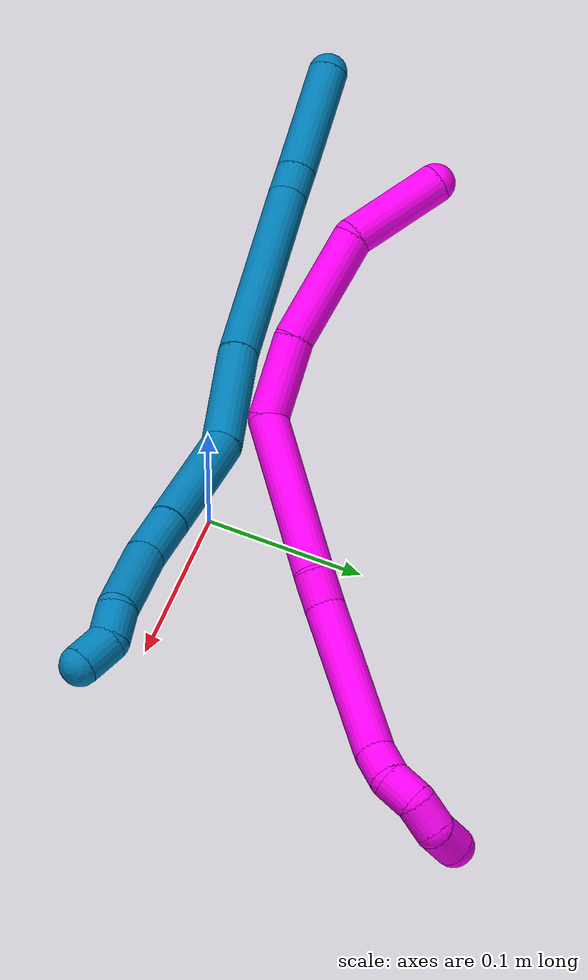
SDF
<sdf version="1.7">
 <world name="default">
  <model name="9">
   <static>0</static>
   <link name="9">
    <collision name="collision-cylinder-e_1_1_4">
     <pose>0.030802 0.003583 -0.022771 -2.98552 0.928352 -2.83172</pose>
     <geometry><cylinder><radius>0.0125</radius><length>0.076945</length></cylinder></geometry>
     <surface>
      <friction><ode><mu>1.16</mu><mu2>1.16</mu2><slip1>0</slip1><slip2>0</slip2></ode></friction>
      <contact><ode><kp>1e+06</kp><kd>1</kd><max_vel>0</max_vel><min_depth>0.001</min_depth></ode></contact>
     </surface>
    </collision>
    <visual name="visual-cylinder-e_1_1_4">
     <pose>0.030802 0.003583 -0.022771 -2.98552 0.928352 -2.83172</pose>
     <geometry><cylinder><radius>0.0125</radius><length>0.076945</length></cylinder></geometry>
     <material><ambient>0 0.490196 0.709804 1</ambient></material>
    </visual>
    <collision name="collision-cylinder-e_2_4_5">
     <pose>0.069667 0.00814 -0.051739 -2.98567 0.909541 -2.82473</pose>
     <geometry><cylinder><radius>0.0125</radius><length>0.020432</length></cylinder></geometry>
     <surface>
      <friction><ode><mu>1.16</mu><mu2>1.16</mu2><slip1>0</slip1><slip2>0</slip2></ode></friction>
      <contact><ode><kp>1e+06</kp><kd>1</kd><max_vel>0</max_vel><min_depth>0.001</min_depth></ode></contact>
     </surface>
    </collision>
    <visual name="visual-cylinder-e_2_4_5">
     <pose>0.069667 0.00814 -0.051739 -2.98567 0.909541 -2.82473</pose>
     <geometry><cylinder><radius>0.0125</radius><length>0.020432</length></cylinder></geometry>
     <material><ambient>0 0.490196 0.709804 1</ambient></material>
    </visual>
    <collision name="collision-cylinder-e_3_5_6">
     <pose>0.124259 0.00803 -0.104203 3.11815 0.788093 3.08523</pose>
     <geometry><cylinder><radius>0.0125</radius><length>0.131251</length></cylinder></geometry>
     <surface>
      <friction><ode><mu>1.16</mu><mu2>1.16</mu2><slip1>0</slip1><slip2>0</slip2></ode></friction>
      <contact><ode><kp>1e+06</kp><kd>1</kd><max_vel>0</max_vel><min_depth>0.001</min_depth></ode></contact>
     </surface>
    </collision>
    <visual name="visual-cylinder-e_3_5_6">
     <pose>0.124259 0.00803 -0.104203 3.11815 0.788093 3.08523</pose>
     <geometry><cylinder><radius>0.0125</radius><length>0.131251</length></cylinder></geometry>
     <material><ambient>0 0.490196 0.709804 1</ambient></material>
    </visual>
    <collision name="collision-cylinder-e_4_6_7">
     <pose>0.19718 0.003907 -0.173214 3.00881 0.855109 2.8518</pose>
     <geometry><cylinder><radius>0.0125</radius><length>0.069946</length></cylinder></geometry>
     <surface>
      <friction><ode><mu>1.16</mu><mu2>1.16</mu2><slip1>0</slip1><slip2>0</slip2></ode></friction>
      <contact><ode><kp>1e+06</kp><kd>1</kd><max_vel>0</max_vel><min_depth>0.001</min_depth></ode></contact>
     </surface>
    </collision>
    <visual name="visual-cylinder-e_4_6_7">
     <pose>0.19718 0.003907 -0.173214 3.00881 0.855109 2.8518</pose>
     <geometry><cylinder><radius>0.0125</radius><length>0.069946</length></cylinder></geometry>
     <material><ambient>0 0.490196 0.709804 1</ambient></material>
    </visual>
    <collision name="collision-cylinder-e_5_7_8">
     <pose>0.243602 0.004538 -0.227633 -3.02629 0.560888 -2.74606</pose>
     <geometry><cylinder><radius>0.0125</radius><length>0.07531</length></cylinder></geometry>
     <surface>
      <friction><ode><mu>1.16</mu><mu2>1.16</mu2><slip1>0</slip1><slip2>0</slip2></ode></friction>
      <contact><ode><kp>1e+06</kp><kd>1</kd><max_vel>0</max_vel><min_depth>0.001</min_depth></ode></contact>
     </surface>
    </collision>
    <visual name="visual-cylinder-e_5_7_8">
     <pose>0.243602 0.004538 -0.227633 -3.02629 0.560888 -2.74606</pose>
     <geometry><cylinder><radius>0.0125</radius><length>0.07531</length></cylinder></geometry>
     <material><ambient>0 0.490196 0.709804 1</ambient></material>
    </visual>
    <collision name="collision-cylinder-e_6_8_9">
     <pose>0.272542 0.010278 -0.272483 -2.98559 0.588943 -2.63714</pose>
     <geometry><cylinder><radius>0.0125</radius><length>0.032081</length></cylinder></geometry>
     <surface>
      <friction><ode><mu>1.16</mu><mu2>1.16</mu2><slip1>0</slip1><slip2>0</slip2></ode></friction>
      <contact><ode><kp>1e+06</kp><kd>1</kd><max_vel>0</max_vel><min_depth>0.001</min_depth></ode></contact>
     </surface>
    </collision>
    <visual name="visual-cylinder-e_6_8_9">
     <pose>0.272542 0.010278 -0.272483 -2.98559 0.588943 -2.63714</pose>
     <geometry><cylinder><radius>0.0125</radius><length>0.032081</length></cylinder></geometry>
     <material><ambient>0 0.490196 0.709804 1</ambient></material>
    </visual>
    <collision name="collision-cylinder-e_7_9_10">
     <pose>0.294558 0.01139 -0.306756 3.09608 0.555386 2.98226</pose>
     <geometry><cylinder><radius>0.0125</radius><length>0.049709</length></cylinder></geometry>
     <surface>
      <friction><ode><mu>1.16</mu><mu2>1.16</mu2><slip1>0</slip1><slip2>0</slip2></ode></friction>
      <contact><ode><kp>1e+06</kp><kd>1</kd><max_vel>0</max_vel><min_depth>0.001</min_depth></ode></contact>
     </surface>
    </collision>
    <visual name="visual-cylinder-e_7_9_10">
     <pose>0.294558 0.01139 -0.306756 3.09608 0.555386 2.98226</pose>
     <geometry><cylinder><radius>0.0125</radius><length>0.049709</length></cylinder></geometry>
     <material><ambient>0 0.490196 0.709804 1</ambient></material>
    </visual>
    <collision name="collision-cylinder-e_8_10_11">
     <pose>0.316151 0.010754 -0.334247 -3.09078 0.924511 -3.03968</pose>
     <geometry><cylinder><radius>0.0125</radius><length>0.021264</length></cylinder></geometry>
     <surface>
      <friction><ode><mu>1.16</mu><mu2>1.16</mu2><slip1>0</slip1><slip2>0</slip2></ode></friction>
      <contact><ode><kp>1e+06</kp><kd>1</kd><max_vel>0</max_vel><min_depth>0.001</min_depth></ode></contact>
     </surface>
    </collision>
    <visual name="visual-cylinder-e_8_10_11">
     <pose>0.316151 0.010754 -0.334247 -3.09078 0.924511 -3.03968</pose>
     <geometry><cylinder><radius>0.0125</radius><length>0.021264</length></cylinder></geometry>
     <material><ambient>0 0.490196 0.709804 1</ambient></material>
    </visual>
    <collision name="collision-cylinder-e_9_11_2">
     <pose>0.330338 0.016431 -0.349119 -2.57847 0.516932 -1.48103</pose>
     <geometry><cylinder><radius>0.0125</radius><length>0.023063</length></cylinder></geometry>
     <surface>
      <friction><ode><mu>1.16</mu><mu2>1.16</mu2><slip1>0</slip1><slip2>0</slip2></ode></friction>
      <contact><ode><kp>1e+06</kp><kd>1</kd><max_vel>0</max_vel><min_depth>0.001</min_depth></ode></contact>
     </surface>
    </collision>
    <visual name="visual-cylinder-e_9_11_2">
     <pose>0.330338 0.016431 -0.349119 -2.57847 0.516932 -1.48103</pose>
     <geometry><cylinder><radius>0.0125</radius><length>0.023063</length></cylinder></geometry>
     <material><ambient>0 0.490196 0.709804 1</ambient></material>
    </visual>
    <collision name="collision-sphere-2">
     <pose>0.336037 0.021783 -0.357596 0 -0 0</pose>
     <geometry><sphere><radius>0.0125</radius></sphere></geometry>
     <surface>
      <friction><ode><mu>1.16</mu><mu2>1.16</mu2><slip1>0</slip1><slip2>0</slip2></ode></friction>
      <contact><ode><kp>1e+06</kp><kd>1</kd><max_vel>0</max_vel><min_depth>0.001</min_depth></ode></contact>
     </surface>
    </collision>
    <visual name="visual-sphere-2">
     <pose>0.336037 0.021783 -0.357596 0 -0 0</pose>
     <geometry><sphere><radius>0.0125</radius></sphere></geometry>
     <material><ambient>0 0.490196 0.709804 1</ambient></material>
    </visual>
    <collision name="collision-sphere-11">
     <pose>0.324639 0.01108 -0.340642 0 -0 0</pose>
     <geometry><sphere><radius>0.0125</radius></sphere></geometry>
     <surface>
      <friction><ode><mu>1.16</mu><mu2>1.16</mu2><slip1>0</slip1><slip2>0</slip2></ode></friction>
      <contact><ode><kp>1e+06</kp><kd>1</kd><max_vel>0</max_vel><min_depth>0.001</min_depth></ode></contact>
     </surface>
    </collision>
    <visual name="visual-sphere-11">
     <pose>0.324639 0.01108 -0.340642 0 -0 0</pose>
     <geometry><sphere><radius>0.0125</radius></sphere></geometry>
     <material><ambient>0 0.490196 0.709804 1</ambient></material>
    </visual>
    <collision name="collision-sphere-10">
     <pose>0.307663 0.010429 -0.327853 0 -0 0</pose>
     <geometry><sphere><radius>0.0125</radius></sphere></geometry>
     <surface>
      <friction><ode><mu>1.16</mu><mu2>1.16</mu2><slip1>0</slip1><slip2>0</slip2></ode></friction>
      <contact><ode><kp>1e+06</kp><kd>1</kd><max_vel>0</max_vel><min_depth>0.001</min_depth></ode></contact>
     </surface>
    </collision>
    <visual name="visual-sphere-10">
     <pose>0.307663 0.010429 -0.327853 0 -0 0</pose>
     <geometry><sphere><radius>0.0125</radius></sphere></geometry>
     <material><ambient>0 0.490196 0.709804 1</ambient></material>
    </visual>
    <collision name="collision-sphere-9">
     <pose>0.281452 0.012351 -0.285659 0 -0 0</pose>
     <geometry><sphere><radius>0.0125</radius></sphere></geometry>
     <surface>
      <friction><ode><mu>1.16</mu><mu2>1.16</mu2><slip1>0</slip1><slip2>0</slip2></ode></friction>
      <contact><ode><kp>1e+06</kp><kd>1</kd><max_vel>0</max_vel><min_depth>0.001</min_depth></ode></contact>
     </surface>
    </collision>
    <visual name="visual-sphere-9">
     <pose>0.281452 0.012351 -0.285659 0 -0 0</pose>
     <geometry><sphere><radius>0.0125</radius></sphere></geometry>
     <material><ambient>0 0.490196 0.709804 1</ambient></material>
    </visual>
    <collision name="collision-sphere-4">
     <pose>0.061605 0.007166 -0.045541 0 -0 0</pose>
     <geometry><sphere><radius>0.0125</radius></sphere></geometry>
     <surface>
      <friction><ode><mu>1.16</mu><mu2>1.16</mu2><slip1>0</slip1><slip2>0</slip2></ode></friction>
      <contact><ode><kp>1e+06</kp><kd>1</kd><max_vel>0</max_vel><min_depth>0.001</min_depth></ode></contact>
     </surface>
    </collision>
    <visual name="visual-sphere-4">
     <pose>0.061605 0.007166 -0.045541 0 -0 0</pose>
     <geometry><sphere><radius>0.0125</radius></sphere></geometry>
     <material><ambient>0 0.490196 0.709804 1</ambient></material>
    </visual>
    <collision name="collision-sphere-1">
     <geometry><sphere><radius>0.0125</radius></sphere></geometry>
     <surface>
      <friction><ode><mu>1.16</mu><mu2>1.16</mu2><slip1>0</slip1><slip2>0</slip2></ode></friction>
      <contact><ode><kp>1e+06</kp><kd>1</kd><max_vel>0</max_vel><min_depth>0.001</min_depth></ode></contact>
     </surface>
    </collision>
    <visual name="visual-sphere-1">
     <geometry><sphere><radius>0.0125</radius></sphere></geometry>
     <material><ambient>0 0.490196 0.709804 1</ambient></material>
    </visual>
    <collision name="collision-sphere-8">
     <pose>0.263632 0.008206 -0.259307 0 -0 0</pose>
     <geometry><sphere><radius>0.0125</radius></sphere></geometry>
     <surface>
      <friction><ode><mu>1.16</mu><mu2>1.16</mu2><slip1>0</slip1><slip2>0</slip2></ode></friction>
      <contact><ode><kp>1e+06</kp><kd>1</kd><max_vel>0</max_vel><min_depth>0.001</min_depth></ode></contact>
     </surface>
    </collision>
    <visual name="visual-sphere-8">
     <pose>0.263632 0.008206 -0.259307 0 -0 0</pose>
     <geometry><sphere><radius>0.0125</radius></sphere></geometry>
     <material><ambient>0 0.490196 0.709804 1</ambient></material>
    </visual>
    <collision name="collision-sphere-5">
     <pose>0.07773 0.009115 -0.057937 0 -0 0</pose>
     <geometry><sphere><radius>0.0125</radius></sphere></geometry>
     <surface>
      <friction><ode><mu>1.16</mu><mu2>1.16</mu2><slip1>0</slip1><slip2>0</slip2></ode></friction>
      <contact><ode><kp>1e+06</kp><kd>1</kd><max_vel>0</max_vel><min_depth>0.001</min_depth></ode></contact>
     </surface>
    </collision>
    <visual name="visual-sphere-5">
     <pose>0.07773 0.009115 -0.057937 0 -0 0</pose>
     <geometry><sphere><radius>0.0125</radius></sphere></geometry>
     <material><ambient>0 0.490196 0.709804 1</ambient></material>
    </visual>
    <collision name="collision-sphere-6">
     <pose>0.170788 0.006945 -0.150469 0 -0 0</pose>
     <geometry><sphere><radius>0.0125</radius></sphere></geometry>
     <surface>
      <friction><ode><mu>1.16</mu><mu2>1.16</mu2><slip1>0</slip1><slip2>0</slip2></ode></friction>
      <contact><ode><kp>1e+06</kp><kd>1</kd><max_vel>0</max_vel><min_depth>0.001</min_depth></ode></contact>
     </surface>
    </collision>
    <visual name="visual-sphere-6">
     <pose>0.170788 0.006945 -0.150469 0 -0 0</pose>
     <geometry><sphere><radius>0.0125</radius></sphere></geometry>
     <material><ambient>0 0.490196 0.709804 1</ambient></material>
    </visual>
    <collision name="collision-sphere-7">
     <pose>0.223572 0.000869 -0.195959 0 -0 0</pose>
     <geometry><sphere><radius>0.0125</radius></sphere></geometry>
     <surface>
      <friction><ode><mu>1.16</mu><mu2>1.16</mu2><slip1>0</slip1><slip2>0</slip2></ode></friction>
      <contact><ode><kp>1e+06</kp><kd>1</kd><max_vel>0</max_vel><min_depth>0.001</min_depth></ode></contact>
     </surface>
    </collision>
    <visual name="visual-sphere-7">
     <pose>0.223572 0.000869 -0.195959 0 -0 0</pose>
     <geometry><sphere><radius>0.0125</radius></sphere></geometry>
     <material><ambient>0 0.490196 0.709804 1</ambient></material>
    </visual>
    <inertial>
     <pose>0.179934 0.007229 -0.169787 0 -0 0</pose>
     <mass>0.5</mass>
     <inertia>
      <ixx>-0.000207</ixx>
      <ixy>0</ixy>
      <ixz>0</ixz>
      <iyy>0.000313</iyy>
      <iyz>0</iyz>
      <izz>-0.000257</izz>
     </inertia>
    </inertial>
   </link>
   <pose>-0.297044 -0.042894 0.070411 -2.60307 0.589617 0.516642</pose>
  </model>
  <model name="10">
   <static>0</static>
   <link name="10">
    <collision name="collision-cylinder-e_1_1_4">
     <pose>-0.010393 0.030921 0.002166 -1.50088 -0.323509 0.301987</pose>
     <geometry><cylinder><radius>0.0125</radius><length>0.065386</length></cylinder></geometry>
     <surface>
      <friction><ode><mu>1.16</mu><mu2>1.16</mu2><slip1>0</slip1><slip2>0</slip2></ode></friction>
      <contact><ode><kp>1e+06</kp><kd>1</kd><max_vel>0</max_vel><min_depth>0.001</min_depth></ode></contact>
     </surface>
    </collision>
    <visual name="visual-cylinder-e_1_1_4">
     <pose>-0.010393 0.030921 0.002166 -1.50088 -0.323509 0.301987</pose>
     <geometry><cylinder><radius>0.0125</radius><length>0.065386</length></cylinder></geometry>
     <material><ambient>1 0 0.964706 1</ambient></material>
    </visual>
    <collision name="collision-cylinder-e_2_4_5">
     <pose>-0.015577 0.09812 0.005545 -1.53735 0.142522 -0.137848</pose>
     <geometry><cylinder><radius>0.0125</radius><length>0.073339</length></cylinder></geometry>
     <surface>
      <friction><ode><mu>1.16</mu><mu2>1.16</mu2><slip1>0</slip1><slip2>0</slip2></ode></friction>
      <contact><ode><kp>1e+06</kp><kd>1</kd><max_vel>0</max_vel><min_depth>0.001</min_depth></ode></contact>
     </surface>
    </collision>
    <visual name="visual-cylinder-e_2_4_5">
     <pose>-0.015577 0.09812 0.005545 -1.53735 0.142522 -0.137848</pose>
     <geometry><cylinder><radius>0.0125</radius><length>0.073339</length></cylinder></geometry>
     <material><ambient>1 0 0.964706 1</ambient></material>
    </visual>
    <collision name="collision-cylinder-e_3_5_6">
     <pose>-0.001983 0.158873 0.004915 -1.64596 0.32922 -0.35443</pose>
     <geometry><cylinder><radius>0.0125</radius><length>0.051877</length></cylinder></geometry>
     <surface>
      <friction><ode><mu>1.16</mu><mu2>1.16</mu2><slip1>0</slip1><slip2>0</slip2></ode></friction>
      <contact><ode><kp>1e+06</kp><kd>1</kd><max_vel>0</max_vel><min_depth>0.001</min_depth></ode></contact>
     </surface>
    </collision>
    <visual name="visual-cylinder-e_3_5_6">
     <pose>-0.001983 0.158873 0.004915 -1.64596 0.32922 -0.35443</pose>
     <geometry><cylinder><radius>0.0125</radius><length>0.051877</length></cylinder></geometry>
     <material><ambient>1 0 0.964706 1</ambient></material>
    </visual>
    <collision name="collision-cylinder-e_4_6_7">
     <pose>0.034515 0.217113 -0.026886 -2.29655 0.557015 -1.13291</pose>
     <geometry><cylinder><radius>0.0125</radius><length>0.106352</length></cylinder></geometry>
     <surface>
      <friction><ode><mu>1.16</mu><mu2>1.16</mu2><slip1>0</slip1><slip2>0</slip2></ode></friction>
      <contact><ode><kp>1e+06</kp><kd>1</kd><max_vel>0</max_vel><min_depth>0.001</min_depth></ode></contact>
     </surface>
    </collision>
    <visual name="visual-cylinder-e_4_6_7">
     <pose>0.034515 0.217113 -0.026886 -2.29655 0.557015 -1.13291</pose>
     <geometry><cylinder><radius>0.0125</radius><length>0.106352</length></cylinder></geometry>
     <material><ambient>1 0 0.964706 1</ambient></material>
    </visual>
    <collision name="collision-cylinder-e_5_7_8">
     <pose>0.070152 0.257693 -0.061707 -2.19054 0.732095 -1.27983</pose>
     <geometry><cylinder><radius>0.0125</radius><length>0.022519</length></cylinder></geometry>
     <surface>
      <friction><ode><mu>1.16</mu><mu2>1.16</mu2><slip1>0</slip1><slip2>0</slip2></ode></friction>
      <contact><ode><kp>1e+06</kp><kd>1</kd><max_vel>0</max_vel><min_depth>0.001</min_depth></ode></contact>
     </surface>
    </collision>
    <visual name="visual-cylinder-e_5_7_8">
     <pose>0.070152 0.257693 -0.061707 -2.19054 0.732095 -1.27983</pose>
     <geometry><cylinder><radius>0.0125</radius><length>0.022519</length></cylinder></geometry>
     <material><ambient>1 0 0.964706 1</ambient></material>
    </visual>
    <collision name="collision-cylinder-e_6_8_9">
     <pose>0.104037 0.294338 -0.09582 -2.34638 0.562866 -1.20579</pose>
     <geometry><cylinder><radius>0.0125</radius><length>0.098792</length></cylinder></geometry>
     <surface>
      <friction><ode><mu>1.16</mu><mu2>1.16</mu2><slip1>0</slip1><slip2>0</slip2></ode></friction>
      <contact><ode><kp>1e+06</kp><kd>1</kd><max_vel>0</max_vel><min_depth>0.001</min_depth></ode></contact>
     </surface>
    </collision>
    <visual name="visual-cylinder-e_6_8_9">
     <pose>0.104037 0.294338 -0.09582 -2.34638 0.562866 -1.20579</pose>
     <geometry><cylinder><radius>0.0125</radius><length>0.098792</length></cylinder></geometry>
     <material><ambient>1 0 0.964706 1</ambient></material>
    </visual>
    <collision name="collision-cylinder-e_7_9_10">
     <pose>0.135085 0.328911 -0.132897 -2.59671 0.473458 -1.42456</pose>
     <geometry><cylinder><radius>0.0125</radius><length>0.020572</length></cylinder></geometry>
     <surface>
      <friction><ode><mu>1.16</mu><mu2>1.16</mu2><slip1>0</slip1><slip2>0</slip2></ode></friction>
      <contact><ode><kp>1e+06</kp><kd>1</kd><max_vel>0</max_vel><min_depth>0.001</min_depth></ode></contact>
     </surface>
    </collision>
    <visual name="visual-cylinder-e_7_9_10">
     <pose>0.135085 0.328911 -0.132897 -2.59671 0.473458 -1.42456</pose>
     <geometry><cylinder><radius>0.0125</radius><length>0.020572</length></cylinder></geometry>
     <material><ambient>1 0 0.964706 1</ambient></material>
    </visual>
    <collision name="collision-cylinder-e_8_10_11">
     <pose>0.14739 0.335169 -0.147654 -2.92652 0.820997 -2.65532</pose>
     <geometry><cylinder><radius>0.0125</radius><length>0.02081</length></cylinder></geometry>
     <surface>
      <friction><ode><mu>1.16</mu><mu2>1.16</mu2><slip1>0</slip1><slip2>0</slip2></ode></friction>
      <contact><ode><kp>1e+06</kp><kd>1</kd><max_vel>0</max_vel><min_depth>0.001</min_depth></ode></contact>
     </surface>
    </collision>
    <visual name="visual-cylinder-e_8_10_11">
     <pose>0.14739 0.335169 -0.147654 -2.92652 0.820997 -2.65532</pose>
     <geometry><cylinder><radius>0.0125</radius><length>0.02081</length></cylinder></geometry>
     <material><ambient>1 0 0.964706 1</ambient></material>
    </visual>
    <collision name="collision-cylinder-e_9_11_12">
     <pose>0.164315 0.339567 -0.157033 -2.27542 1.18459 -1.93751</pose>
     <geometry><cylinder><radius>0.0125</radius><length>0.020102</length></cylinder></geometry>
     <surface>
      <friction><ode><mu>1.16</mu><mu2>1.16</mu2><slip1>0</slip1><slip2>0</slip2></ode></friction>
      <contact><ode><kp>1e+06</kp><kd>1</kd><max_vel>0</max_vel><min_depth>0.001</min_depth></ode></contact>
     </surface>
    </collision>
    <visual name="visual-cylinder-e_9_11_12">
     <pose>0.164315 0.339567 -0.157033 -2.27542 1.18459 -1.93751</pose>
     <geometry><cylinder><radius>0.0125</radius><length>0.020102</length></cylinder></geometry>
     <material><ambient>1 0 0.964706 1</ambient></material>
    </visual>
    <collision name="collision-cylinder-e_10_12_2">
     <pose>0.183452 0.341666 -0.157168 0.326749 1.32665 0.256223</pose>
     <geometry><cylinder><radius>0.0125</radius><length>0.020252</length></cylinder></geometry>
     <surface>
      <friction><ode><mu>1.16</mu><mu2>1.16</mu2><slip1>0</slip1><slip2>0</slip2></ode></friction>
      <contact><ode><kp>1e+06</kp><kd>1</kd><max_vel>0</max_vel><min_depth>0.001</min_depth></ode></contact>
     </surface>
    </collision>
    <visual name="visual-cylinder-e_10_12_2">
     <pose>0.183452 0.341666 -0.157168 0.326749 1.32665 0.256223</pose>
     <geometry><cylinder><radius>0.0125</radius><length>0.020252</length></cylinder></geometry>
     <material><ambient>1 0 0.964706 1</ambient></material>
    </visual>
    <collision name="collision-sphere-2">
     <pose>0.193278 0.34088 -0.15485 0 -0 0</pose>
     <geometry><sphere><radius>0.0125</radius></sphere></geometry>
     <surface>
      <friction><ode><mu>1.16</mu><mu2>1.16</mu2><slip1>0</slip1><slip2>0</slip2></ode></friction>
      <contact><ode><kp>1e+06</kp><kd>1</kd><max_vel>0</max_vel><min_depth>0.001</min_depth></ode></contact>
     </surface>
    </collision>
    <visual name="visual-sphere-2">
     <pose>0.193278 0.34088 -0.15485 0 -0 0</pose>
     <geometry><sphere><radius>0.0125</radius></sphere></geometry>
     <material><ambient>1 0 0.964706 1</ambient></material>
    </visual>
    <collision name="collision-sphere-12">
     <pose>0.173626 0.342452 -0.159486 0 -0 0</pose>
     <geometry><sphere><radius>0.0125</radius></sphere></geometry>
     <surface>
      <friction><ode><mu>1.16</mu><mu2>1.16</mu2><slip1>0</slip1><slip2>0</slip2></ode></friction>
      <contact><ode><kp>1e+06</kp><kd>1</kd><max_vel>0</max_vel><min_depth>0.001</min_depth></ode></contact>
     </surface>
    </collision>
    <visual name="visual-sphere-12">
     <pose>0.173626 0.342452 -0.159486 0 -0 0</pose>
     <geometry><sphere><radius>0.0125</radius></sphere></geometry>
     <material><ambient>1 0 0.964706 1</ambient></material>
    </visual>
    <collision name="collision-sphere-11">
     <pose>0.155004 0.336683 -0.154581 0 -0 0</pose>
     <geometry><sphere><radius>0.0125</radius></sphere></geometry>
     <surface>
      <friction><ode><mu>1.16</mu><mu2>1.16</mu2><slip1>0</slip1><slip2>0</slip2></ode></friction>
      <contact><ode><kp>1e+06</kp><kd>1</kd><max_vel>0</max_vel><min_depth>0.001</min_depth></ode></contact>
     </surface>
    </collision>
    <visual name="visual-sphere-11">
     <pose>0.155004 0.336683 -0.154581 0 -0 0</pose>
     <geometry><sphere><radius>0.0125</radius></sphere></geometry>
     <material><ambient>1 0 0.964706 1</ambient></material>
    </visual>
    <collision name="collision-sphere-10">
     <pose>0.139775 0.333656 -0.140726 0 -0 0</pose>
     <geometry><sphere><radius>0.0125</radius></sphere></geometry>
     <surface>
      <friction><ode><mu>1.16</mu><mu2>1.16</mu2><slip1>0</slip1><slip2>0</slip2></ode></friction>
      <contact><ode><kp>1e+06</kp><kd>1</kd><max_vel>0</max_vel><min_depth>0.001</min_depth></ode></contact>
     </surface>
    </collision>
    <visual name="visual-sphere-10">
     <pose>0.139775 0.333656 -0.140726 0 -0 0</pose>
     <geometry><sphere><radius>0.0125</radius></sphere></geometry>
     <material><ambient>1 0 0.964706 1</ambient></material>
    </visual>
    <collision name="collision-sphere-9">
     <pose>0.130395 0.324166 -0.125069 0 -0 0</pose>
     <geometry><sphere><radius>0.0125</radius></sphere></geometry>
     <surface>
      <friction><ode><mu>1.16</mu><mu2>1.16</mu2><slip1>0</slip1><slip2>0</slip2></ode></friction>
      <contact><ode><kp>1e+06</kp><kd>1</kd><max_vel>0</max_vel><min_depth>0.001</min_depth></ode></contact>
     </surface>
    </collision>
    <visual name="visual-sphere-9">
     <pose>0.130395 0.324166 -0.125069 0 -0 0</pose>
     <geometry><sphere><radius>0.0125</radius></sphere></geometry>
     <material><ambient>1 0 0.964706 1</ambient></material>
    </visual>
    <collision name="collision-sphere-4">
     <pose>-0.020786 0.061843 0.004331 0 -0 0</pose>
     <geometry><sphere><radius>0.0125</radius></sphere></geometry>
     <surface>
      <friction><ode><mu>1.16</mu><mu2>1.16</mu2><slip1>0</slip1><slip2>0</slip2></ode></friction>
      <contact><ode><kp>1e+06</kp><kd>1</kd><max_vel>0</max_vel><min_depth>0.001</min_depth></ode></contact>
     </surface>
    </collision>
    <visual name="visual-sphere-4">
     <pose>-0.020786 0.061843 0.004331 0 -0 0</pose>
     <geometry><sphere><radius>0.0125</radius></sphere></geometry>
     <material><ambient>1 0 0.964706 1</ambient></material>
    </visual>
    <collision name="collision-sphere-1">
     <geometry><sphere><radius>0.0125</radius></sphere></geometry>
     <surface>
      <friction><ode><mu>1.16</mu><mu2>1.16</mu2><slip1>0</slip1><slip2>0</slip2></ode></friction>
      <contact><ode><kp>1e+06</kp><kd>1</kd><max_vel>0</max_vel><min_depth>0.001</min_depth></ode></contact>
     </surface>
    </collision>
    <visual name="visual-sphere-1">
     <geometry><sphere><radius>0.0125</radius></sphere></geometry>
     <material><ambient>1 0 0.964706 1</ambient></material>
    </visual>
    <collision name="collision-sphere-8">
     <pose>0.077679 0.26451 -0.066571 0 -0 0</pose>
     <geometry><sphere><radius>0.0125</radius></sphere></geometry>
     <surface>
      <friction><ode><mu>1.16</mu><mu2>1.16</mu2><slip1>0</slip1><slip2>0</slip2></ode></friction>
      <contact><ode><kp>1e+06</kp><kd>1</kd><max_vel>0</max_vel><min_depth>0.001</min_depth></ode></contact>
     </surface>
    </collision>
    <visual name="visual-sphere-8">
     <pose>0.077679 0.26451 -0.066571 0 -0 0</pose>
     <geometry><sphere><radius>0.0125</radius></sphere></geometry>
     <material><ambient>1 0 0.964706 1</ambient></material>
    </visual>
    <collision name="collision-sphere-5">
     <pose>-0.010369 0.134397 0.006759 0 -0 0</pose>
     <geometry><sphere><radius>0.0125</radius></sphere></geometry>
     <surface>
      <friction><ode><mu>1.16</mu><mu2>1.16</mu2><slip1>0</slip1><slip2>0</slip2></ode></friction>
      <contact><ode><kp>1e+06</kp><kd>1</kd><max_vel>0</max_vel><min_depth>0.001</min_depth></ode></contact>
     </surface>
    </collision>
    <visual name="visual-sphere-5">
     <pose>-0.010369 0.134397 0.006759 0 -0 0</pose>
     <geometry><sphere><radius>0.0125</radius></sphere></geometry>
     <material><ambient>1 0 0.964706 1</ambient></material>
    </visual>
    <collision name="collision-sphere-6">
     <pose>0.006403 0.183349 0.003072 0 -0 0</pose>
     <geometry><sphere><radius>0.0125</radius></sphere></geometry>
     <surface>
      <friction><ode><mu>1.16</mu><mu2>1.16</mu2><slip1>0</slip1><slip2>0</slip2></ode></friction>
      <contact><ode><kp>1e+06</kp><kd>1</kd><max_vel>0</max_vel><min_depth>0.001</min_depth></ode></contact>
     </surface>
    </collision>
    <visual name="visual-sphere-6">
     <pose>0.006403 0.183349 0.003072 0 -0 0</pose>
     <geometry><sphere><radius>0.0125</radius></sphere></geometry>
     <material><ambient>1 0 0.964706 1</ambient></material>
    </visual>
    <collision name="collision-sphere-7">
     <pose>0.062626 0.250876 -0.056843 0 -0 0</pose>
     <geometry><sphere><radius>0.0125</radius></sphere></geometry>
     <surface>
      <friction><ode><mu>1.16</mu><mu2>1.16</mu2><slip1>0</slip1><slip2>0</slip2></ode></friction>
      <contact><ode><kp>1e+06</kp><kd>1</kd><max_vel>0</max_vel><min_depth>0.001</min_depth></ode></contact>
     </surface>
    </collision>
    <visual name="visual-sphere-7">
     <pose>0.062626 0.250876 -0.056843 0 -0 0</pose>
     <geometry><sphere><radius>0.0125</radius></sphere></geometry>
     <material><ambient>1 0 0.964706 1</ambient></material>
    </visual>
    <inertial>
     <pose>0.052936 0.205835 -0.050116 0 -0 0</pose>
     <mass>0.5</mass>
     <inertia>
      <ixx>-4e-06</ixx>
      <ixy>0</ixy>
      <ixz>0</ixz>
      <iyy>-9.7e-05</iyy>
      <iyz>0</iyz>
      <izz>-0.000312</izz>
     </inertia>
    </inertial>
   </link>
   <pose>-0.219603 0.059617 0.105356 -2.87047 0.769375 1.5269</pose>
  </model>
 </world>
</sdf>
